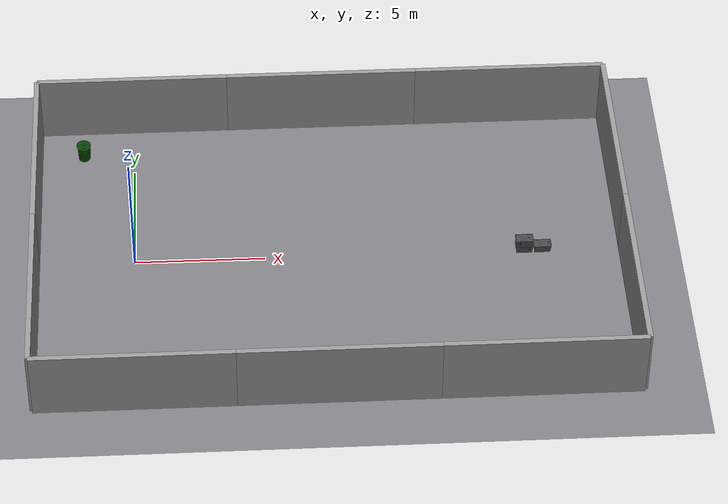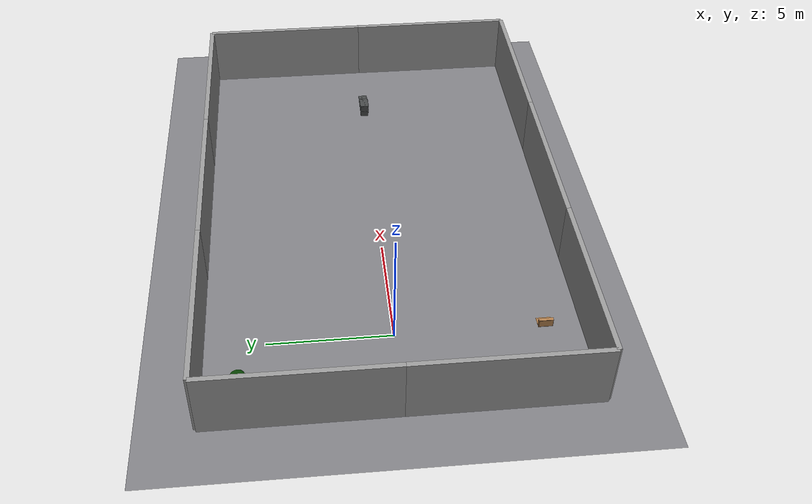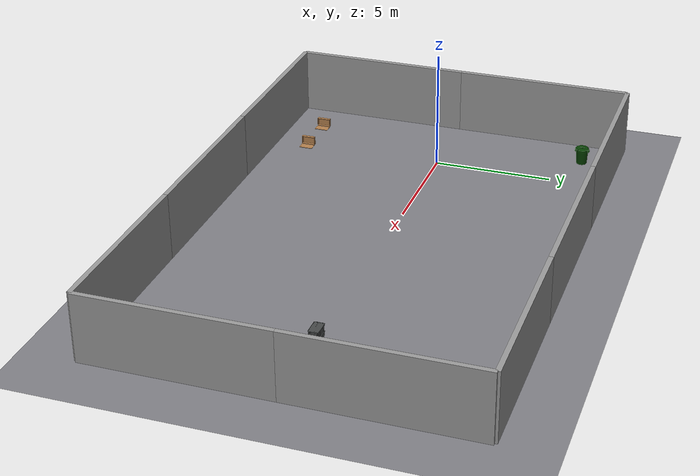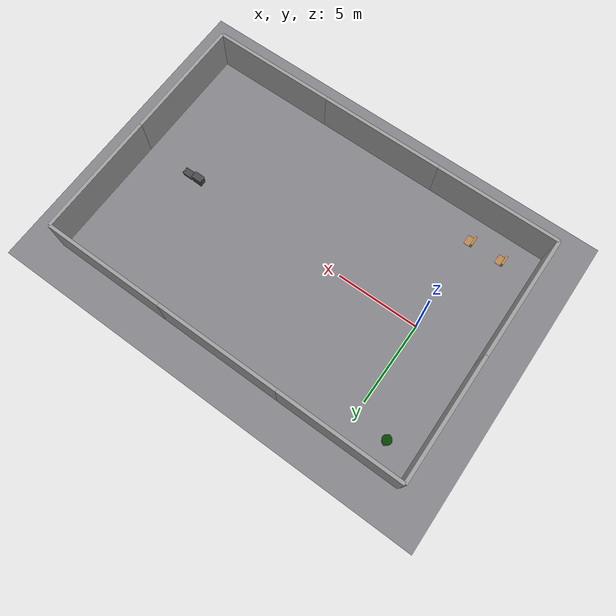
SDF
<sdf version="1.8">
 <world name="h1_world">
  <physics name="1ms" type="ignored">
   <max_step_size>0.001</max_step_size>
   <real_time_factor>1.0</real_time_factor>
  </physics>
  <plugin filename="gz-sim-physics-system" name="gz::sim::systems::Physics"/>
  <plugin filename="gz-sim-user-commands-system" name="gz::sim::systems::UserCommands"/>
  <plugin filename="gz-sim-scene-broadcaster-system" name="gz::sim::systems::SceneBroadcaster"/>
  <plugin filename="gz-sim-contact-system" name="gz::sim::systems::Contact"/>
  <plugin filename="gz-sim-imu-system" name="gz::sim::systems::Imu"/>
  <plugin filename="gz-sim-sensors-system" name="gz::sim::systems::Sensors">
   <render_engine>ogre</render_engine>
  </plugin>
  <scene><ambient>0.6 0.6 0.6 1</ambient><background>0.8 0.8 0.85 1</background></scene>
  <light type="directional" name="sun">
   <pose>0 0 10 0 0 0</pose>
   <diffuse>0.95 0.95 0.95 1</diffuse>
   <specular>0.2 0.2 0.2 1</specular>
   <direction>-0.4 0.2 -0.9</direction>
  </light>
  <model name="ground_plane">
   <static>true</static>
   <link name="link">
    <collision name="collision">
     <geometry><plane><normal>0 0 1</normal><size>100 100</size></plane></geometry>
     <surface><friction><ode><mu>100</mu><mu2>50</mu2></ode></friction></surface>
    </collision>
    <visual name="visual">
     <geometry><plane><normal>0 0 1</normal><size>100 100</size></plane></geometry>
     <material>
      <ambient>0.45 0.45 0.47 1</ambient>
      <diffuse>0.5 0.5 0.52 1</diffuse>
      <specular>0.1 0.1 0.1 1</specular>
     </material>
    </visual>
   </link>
  </model>
  <include><name>wall_l1</name><uri>model://grey_wall</uri><pose>0 7.5 0 0 0 0</pose></include>
  <include><name>wall_l2</name><uri>model://grey_wall</uri><pose>7.5 7.5 0 0 0 0</pose></include>
  <include><name>wall_l3</name><uri>model://grey_wall</uri><pose>15 7.5 0 0 0 0</pose></include>
  <include><name>wall_r1</name><uri>model://grey_wall</uri><pose>0 -7.5 0 0 0 0</pose></include>
  <include><name>wall_r2</name><uri>model://grey_wall</uri><pose>7.5 -7.5 0 0 0 0</pose></include>
  <include><name>wall_r3</name><uri>model://grey_wall</uri><pose>15 -7.5 0 0 0 0</pose></include>
  <include><name>wall_back1</name><uri>model://grey_wall</uri><pose>18.75 3.75 0 0 0 1.5708</pose></include>
  <include><name>wall_back2</name><uri>model://grey_wall</uri><pose>18.75 -3.75 0 0 0 1.5708</pose></include>
  <include><name>wall_front1</name><uri>model://grey_wall</uri><pose>-3.75 3.75 0 0 0 1.5708</pose></include>
  <include><name>wall_front2</name><uri>model://grey_wall</uri><pose>-3.75 -3.75 0 0 0 1.5708</pose></include>
  <include><name>tote_1</name><uri>model://grey_tote</uri><pose>15 0 0 0 0 0</pose></include>
  <include><name>tote_2</name><uri>model://grey_tote</uri><pose>15 0 0.31 0 0 0</pose></include>
  <include><name>tote_3</name><uri>model://grey_tote</uri><pose>15.7 0 0 0 0 0</pose></include>
  <include><name>trash_can</name><uri>model://first_2015_trash_can</uri><pose>-2 6 0 0 0 0</pose></include>
  <include><name>case_1</name><uri>model://wooden_case</uri><pose>-2 -6 0 0 0 0</pose></include>
  <include><name>case_2</name><uri>model://wooden_case</uri><pose>0 -6 0 0 0 0</pose></include>
 </world>
</sdf>

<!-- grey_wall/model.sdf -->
<sdf version="1.5">
  <model name="grey_wall">
    <static>true</static>
    <link name="link">
      <pose>0 0 1.4 0 0 0</pose>
      <collision name="collision">
        <geometry>
          <box>
            <size>7.5 0.2 2.8</size>
          </box>
        </geometry>
      </collision>
      <visual name="visual">
        <cast_shadows>false</cast_shadows>
        <geometry>
          <box>
            <size>7.5 0.2 2.8</size>
          </box>
        </geometry>
        <material>
          <script>
            <uri>model://../model_source/models/grey_wall/materials/scripts</uri>
            <uri>model://../model_source/models/grey_wall/materials/textures</uri>
            <name>vrc/grey_wall</name>
          </script>
        </material>
      </visual>
    </link>
  </model>
</sdf>

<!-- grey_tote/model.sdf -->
<sdf version="1.5">
  <model name="grey_tote">
    <link name="link">
      <inertial>
        <pose>0 0 0.141549545 0 0 0</pose>
        <mass>3.53802</mass>
        <inertia>
          <ixx>0.068835836</ixx>
          <ixy>0</ixy>
          <ixz>0</ixz>
          <iyy>0.139596236</iyy>
          <iyz>0</iyz>
          <izz>0.155908748</izz>
        </inertia>
      </inertial>

      <collision name="lid">
        <pose>0 0 0.28958 0 0 0</pose>
        <geometry>
          <box>
            <size>0.67768 0.41298 0.01588</size>
          </box>
        </geometry>
      </collision>

      <collision name="lid_lip_1">
        <pose>0 0.20063 0.3048 0 0 0</pose>
        <geometry>
          <box>
            <size>0.65068 0.0105 0.0127</size>
          </box>
        </geometry>
      </collision>

      <collision name="lid_lip_2">
        <pose>0 -0.20063 0.3048 0 0 0</pose>
        <geometry>
          <box>
            <size>0.65068 0.0105 0.0127</size>
          </box>
        </geometry>
      </collision>

      <collision name="lid_lip_3">
        <pose>0.32585 0 0.3048 0 0 0</pose>
        <geometry>
          <box>
            <size>0.02602 0.31202 0.0127</size>
          </box>
        </geometry>
      </collision>

      <collision name="lid_lip_4">
        <pose>-0.32585 0 0.3048 0 0 0</pose>
        <geometry>
          <box>
            <size>0.02602 0.31202 0.0127</size>
          </box>
        </geometry>
      </collision>

      <collision name="side_wall_1">
        <pose>0 -0.18 0.141549545 0.0611474431 0 0</pose>
        <geometry>
          <box>
            <size>0.58404 0.02602 0.28309909</size>
          </box>
        </geometry>
      </collision>

      <collision name="side_wall_2">
        <pose>0 0.18 0.141549545 -0.0611474431 0 0</pose>
        <geometry>
          <box>
            <size>0.58404 0.02602 0.28309909</size>
          </box>
        </geometry>
      </collision>

      <collision name="side_wall_3">
        <pose>0.305 0 0.141549545 0 0.0611474431 0</pose>
        <geometry>
          <box>
            <size>0.02602 0.33046 0.28309909</size>
          </box>
        </geometry>
      </collision>

      <collision name="side_wall_4">
        <pose>-0.305 0 0.141549545 0 -0.0611474431 0</pose>
        <geometry>
          <box>
            <size>0.02602 0.33046 0.28309909</size>
          </box>
        </geometry>
      </collision>

      <collision name="bottom">
        <pose>0 0 0.01 0 0 0</pose>
        <geometry>
          <box>
            <size>0.58404 0.33046 0.02</size>
          </box>
        </geometry>
      </collision>

      <collision name="corner_1">
        <pose>0.30202 -0.175 0.141549545 0.0611474431 0.0611474431 0</pose>
        <geometry>
          <cylinder>
            <radius>0.01268</radius>
            <length>0.28309909</length>
          </cylinder>
        </geometry>
      </collision>

      <collision name="corner_2">
        <pose>-0.30202 -0.175 0.141549545 0.0611474431 -0.0611474431 0</pose>
        <geometry>
          <cylinder>
            <radius>0.01268</radius>
            <length>0.28309909</length>
          </cylinder>
        </geometry>
      </collision>

      <collision name="corner_3">
        <pose>-0.30202 0.175 0.141549545 -0.0611474431 -0.0611474431 0</pose>
        <geometry>
          <cylinder>
            <radius>0.01268</radius>
            <length>0.28309909</length>
          </cylinder>
        </geometry>
      </collision>

      <collision name="corner_4">
        <pose>0.30202 0.175 0.141549545 -0.0611474431 0.0611474431 0</pose>
        <geometry>
          <cylinder>
            <radius>0.01268</radius>
            <length>0.28309909</length>
          </cylinder>
        </geometry>
      </collision>

      <visual name="visual">
        <geometry>
          <mesh>
            <uri>model://grey_tote/meshes/tote.dae</uri>
          </mesh>
        </geometry>
      </visual>
    </link>
  </model>
</sdf>

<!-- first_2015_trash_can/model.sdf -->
<sdf version="1.5">
  <model name="first_2015_trash_can">
    <link name="link">
      <inertial>
        <pose>0 0 0.3683 0 0 0</pose>
        <mass>4.83076</mass>
        <inertia>
          <ixx>0.281534052</ixx>
          <ixy>0</ixy>
          <ixz>0</ixz>
          <iyy>0.281534052</iyy>
          <iyz>0</iyz>
          <izz>0.126222831</izz>
        </inertia>
      </inertial>

      <visual name="visual">
        <geometry>
          <mesh>
            <uri>model://first_2015_trash_can/meshes/trash_can.dae</uri>
          </mesh>
        </geometry>
      </visual>

      <collision name="collision">
        <geometry>
          <mesh>
            <uri>model://first_2015_trash_can/meshes/trash_can.dae</uri>
          </mesh>
        </geometry>
      </collision>
    </link>
  </model>
</sdf>

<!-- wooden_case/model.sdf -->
<sdf version="1.5">
  <model name="wooden_case">
    <link name="base">

      <pose>0 0 0.024  0 0 0</pose>
      <inertial>
        <pose>-0.02218446808213116 0.0 0.17159249678128843  0 0 0</pose>
        <mass>3.9626366887499986</mass>
        <inertia>
          <ixx>0.2135364168029657</ixx>
          <ixy>0.0</ixy>
          <ixz>0.0007793770806417083</ixz>
          <iyy>0.07089428398599372</iyy>
          <iyz>0.0</iyz>
          <izz>0.15460392299497075</izz>
        </inertia>
      </inertial>

      <collision name="collision_back">
        <pose>-0.053975 0 0.17779999999999999  0 0 0</pose>
        <geometry>
          <box>
            <size>0.019049999999999997 0.5460999999999999 0.3175</size>
          </box>
        </geometry>
        <surface>
          <contact>

            <poissons_ratio>0.347</poissons_ratio>
            <elastic_modulus>8.8e+09</elastic_modulus>
            <ode>
              <kp>100000</kp>
              <kd>100</kd>
              <max_vel>100.0</max_vel>
              <min_depth>0.001</min_depth>
            </ode>
          </contact>
          <friction>
            <torsional>
              <coefficient>1.0</coefficient>
              <use_patch_radius>0</use_patch_radius>
              <surface_radius>0.01</surface_radius>
            </torsional>
          </friction>
        </surface>
      </collision>
      <visual name="visual_back">
        <pose>-0.053975 0 0.17779999999999999  0 0 0</pose>
        <geometry>
          <box>
            <size>0.019049999999999997 0.5460999999999999 0.3175</size>
          </box>
        </geometry>
        <material>
          <script>
            <uri>model://media/materials/scripts/gazebo.material</uri>
            <name>Gazebo/Wood</name>
          </script>
        </material>
      </visual>

      <collision name="collision_bottom">
        <pose>0 0 0.009524999999999999  0 0 0</pose>
        <geometry>
          <box>
            <size>0.127 0.5841999999999999 0.019049999999999997</size>
          </box>
        </geometry>
        <surface>
          <contact>

            <poissons_ratio>0.347</poissons_ratio>
            <elastic_modulus>8.8e+09</elastic_modulus>
            <ode>
              <kp>100000</kp>
              <kd>100</kd>
              <max_vel>100.0</max_vel>
              <min_depth>0.001</min_depth>
            </ode>
          </contact>
          <friction>
            <torsional>
              <coefficient>1.0</coefficient>
              <use_patch_radius>0</use_patch_radius>
              <surface_radius>0.01</surface_radius>
            </torsional>
          </friction>
        </surface>
      </collision>
      <visual name="visual_bottom">
        <pose>0 0 0.009524999999999999  0 0 0</pose>
        <geometry>
          <box>
            <size>0.127 0.5841999999999999 0.019049999999999997</size>
          </box>
        </geometry>
        <material>
          <script>
            <uri>model://media/materials/scripts/gazebo.material</uri>
            <name>Gazebo/Wood</name>
          </script>
        </material>
      </visual>

      <collision name="collision_top">
        <pose>0 0 0.34607499999999997  0 0 0</pose>
        <geometry>
          <box>
            <size>0.127 0.5841999999999999 0.019049999999999997</size>
          </box>
        </geometry>
        <surface>
          <contact>

            <poissons_ratio>0.347</poissons_ratio>
            <elastic_modulus>8.8e+09</elastic_modulus>
            <ode>
              <kp>100000</kp>
              <kd>100</kd>
              <max_vel>100.0</max_vel>
              <min_depth>0.001</min_depth>
            </ode>
          </contact>
          <friction>
            <torsional>
              <coefficient>1.0</coefficient>
              <use_patch_radius>0</use_patch_radius>
              <surface_radius>0.01</surface_radius>
            </torsional>
          </friction>
        </surface>
      </collision>
      <visual name="visual_top">
        <pose>0 0 0.34607499999999997  0 0 0</pose>
        <geometry>
          <box>
            <size>0.127 0.5841999999999999 0.019049999999999997</size>
          </box>
        </geometry>
        <material>
          <script>
            <uri>model://media/materials/scripts/gazebo.material</uri>
            <name>Gazebo/Wood</name>
          </script>
        </material>
      </visual>

      <collision name="collision_left">
        <pose>0 -0.28257499999999997 0.17779999999999999  0 0 0</pose>
        <geometry>
          <box>
            <size>0.127 0.019049999999999997 0.3175</size>
          </box>
        </geometry>
        <surface>
          <contact>

            <poissons_ratio>0.347</poissons_ratio>
            <elastic_modulus>8.8e+09</elastic_modulus>
            <ode>
              <kp>100000</kp>
              <kd>100</kd>
              <max_vel>100.0</max_vel>
              <min_depth>0.001</min_depth>
            </ode>
          </contact>
          <friction>
            <torsional>
              <coefficient>1.0</coefficient>
              <use_patch_radius>0</use_patch_radius>
              <surface_radius>0.01</surface_radius>
            </torsional>
          </friction>
        </surface>
      </collision>
      <visual name="visual_left">
        <pose>0 -0.28257499999999997 0.17779999999999999  0 0 0</pose>
        <geometry>
          <box>
            <size>0.127 0.019049999999999997 0.3175</size>
          </box>
        </geometry>
        <material>
          <script>
            <uri>model://media/materials/scripts/gazebo.material</uri>
            <name>Gazebo/Wood</name>
          </script>
        </material>
      </visual>

      <collision name="collision_right">
        <pose>0 0.28257499999999997 0.17779999999999999  0 0 0</pose>
        <geometry>
          <box>
            <size>0.127 0.019049999999999997 0.3175</size>
          </box>
        </geometry>
        <surface>
          <contact>

            <poissons_ratio>0.347</poissons_ratio>
            <elastic_modulus>8.8e+09</elastic_modulus>
            <ode>
              <kp>100000</kp>
              <kd>100</kd>
              <max_vel>100.0</max_vel>
              <min_depth>0.001</min_depth>
            </ode>
          </contact>
          <friction>
            <torsional>
              <coefficient>1.0</coefficient>
              <use_patch_radius>0</use_patch_radius>
              <surface_radius>0.01</surface_radius>
            </torsional>
          </friction>
        </surface>
      </collision>
      <visual name="visual_right">
        <pose>0 0.28257499999999997 0.17779999999999999  0 0 0</pose>
        <geometry>
          <box>
            <size>0.127 0.019049999999999997 0.3175</size>
          </box>
        </geometry>
        <material>
          <script>
            <uri>model://media/materials/scripts/gazebo.material</uri>
            <name>Gazebo/Wood</name>
          </script>
        </material>
      </visual>

      <collision name="collision_block_left">
        <pose>0.009500000000000001 -0.21509999999999996 -0.012  0 0 0</pose>
        <geometry>
          <box>
            <size>0.108 0.05 0.024</size>
          </box>
        </geometry>
        <surface>
          <contact>

            <poissons_ratio>0.347</poissons_ratio>
            <elastic_modulus>8.8e+09</elastic_modulus>
            <ode>
              <kp>100000</kp>
              <kd>100</kd>
              <max_vel>100.0</max_vel>
              <min_depth>0.001</min_depth>
            </ode>
          </contact>
          <friction>
            <torsional>
              <coefficient>1.0</coefficient>
              <use_patch_radius>0</use_patch_radius>
              <surface_radius>0.01</surface_radius>
            </torsional>
          </friction>
        </surface>
      </collision>
      <visual name="visual_block_left">
        <pose>0.009500000000000001 -0.21509999999999996 -0.012  0 0 0</pose>
        <geometry>
          <box>
            <size>0.108 0.05 0.024</size>
          </box>
        </geometry>
        <material>
          <script>
            <uri>model://media/materials/scripts/gazebo.material</uri>
            <name>Gazebo/Wood</name>
          </script>
        </material>
      </visual>

      <collision name="collision_block_right">
        <pose>0.009500000000000001 0.21509999999999996 -0.012  0 0 0</pose>
        <geometry>
          <box>
            <size>0.108 0.05 0.024</size>
          </box>
        </geometry>
        <surface>
          <contact>

            <poissons_ratio>0.347</poissons_ratio>
            <elastic_modulus>8.8e+09</elastic_modulus>
            <ode>
              <kp>100000</kp>
              <kd>100</kd>
              <max_vel>100.0</max_vel>
              <min_depth>0.001</min_depth>
            </ode>
          </contact>
          <friction>
            <torsional>
              <coefficient>1.0</coefficient>
              <use_patch_radius>0</use_patch_radius>
              <surface_radius>0.01</surface_radius>
            </torsional>
          </friction>
        </surface>
      </collision>
      <visual name="visual_block_right">
        <pose>0.009500000000000001 0.21509999999999996 -0.012  0 0 0</pose>
        <geometry>
          <box>
            <size>0.108 0.05 0.024</size>
          </box>
        </geometry>
        <material>
          <script>
            <uri>model://media/materials/scripts/gazebo.material</uri>
            <name>Gazebo/Wood</name>
          </script>
        </material>
      </visual>

    </link>

    <link name="lid">

      <pose>0.24377499999999996 0 0.009524999999999999  0 0 0</pose>
      <inertial>
        <mass>1.9787379779999992</mass>
        <inertia>
          <ixx>0.05633673842708405</ixx>
          <ixy>0</ixy>
          <ixz>0</ixz>
          <iyy>0.020911016446734258</iyy>
          <iyz>0</iyz>
          <izz>0.07712807338064145</izz>
        </inertia>
      </inertial>
      <collision name="collision">
        <geometry>
          <box>
            <size>0.35559999999999997 0.5841999999999999 0.019049999999999997</size>
          </box>
        </geometry>
        <surface>
          <contact>

            <poissons_ratio>0.347</poissons_ratio>
            <elastic_modulus>8.8e+09</elastic_modulus>
            <ode>
              <kp>100000</kp>
              <kd>100</kd>
              <max_vel>100.0</max_vel>
              <min_depth>0.001</min_depth>
            </ode>
          </contact>
          <friction>
            <torsional>
              <coefficient>1.0</coefficient>
              <use_patch_radius>0</use_patch_radius>
              <surface_radius>0.01</surface_radius>
            </torsional>
          </friction>
        </surface>
      </collision>
      <visual name="visual">
        <geometry>
          <box>
            <size>0.35559999999999997 0.5841999999999999 0.019049999999999997</size>
          </box>
        </geometry>
        <material>
          <script>
            <uri>model://media/materials/scripts/gazebo.material</uri>
            <name>Gazebo/Wood</name>
          </script>
        </material>
      </visual>

      <visual name="tee_nut_1">
        <pose>0.122 -0.216 0.0  0 0 0</pose>
        <geometry>
          <cylinder>
            <radius>0.00635</radius>
            <length>0.019240499999999997</length>
          </cylinder>
        </geometry>
        <material>
          <script>
            <uri>model://media/materials/scripts/gazebo.material</uri>
            <name>Gazebo/Grey</name>
          </script>
        </material>
      </visual>

      <visual name="tee_nut_2">
        <pose>0.122 -0.088 0.0  0 0 0</pose>
        <geometry>
          <cylinder>
            <radius>0.00635</radius>
            <length>0.019240499999999997</length>
          </cylinder>
        </geometry>
        <material>
          <script>
            <uri>model://media/materials/scripts/gazebo.material</uri>
            <name>Gazebo/Grey</name>
          </script>
        </material>
      </visual>

      <visual name="tee_nut_3">
        <pose>0.122 0.088 0.0  0 0 0</pose>
        <geometry>
          <cylinder>
            <radius>0.00635</radius>
            <length>0.019240499999999997</length>
          </cylinder>
        </geometry>
        <material>
          <script>
            <uri>model://media/materials/scripts/gazebo.material</uri>
            <name>Gazebo/Grey</name>
          </script>
        </material>
      </visual>

      <visual name="tee_nut_4">
        <pose>0.122 0.216 0.0  0 0 0</pose>
        <geometry>
          <cylinder>
            <radius>0.00635</radius>
            <length>0.019240499999999997</length>
          </cylinder>
        </geometry>
        <material>
          <script>
            <uri>model://media/materials/scripts/gazebo.material</uri>
            <name>Gazebo/Grey</name>
          </script>
        </material>
      </visual>

    </link>

    <joint name="lid_hinge" type="revolute">
      <pose>-0.17779999999999999 0 0.019049999999999997  0 0 0</pose>
      <parent>base</parent>
      <child>lid</child>
      <axis>
        <xyz>0 1 0</xyz>
        <limit>
          <upper>0.5235987755982988</upper>
          <lower>-1.5707963267948966</lower>
        </limit>
      </axis>
    </joint>

  </model>
</sdf>
